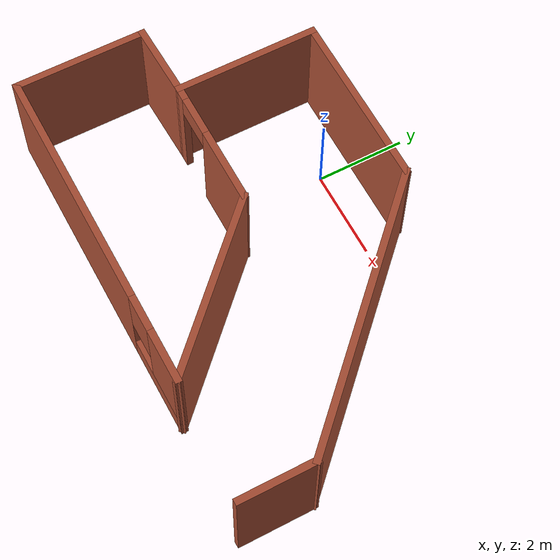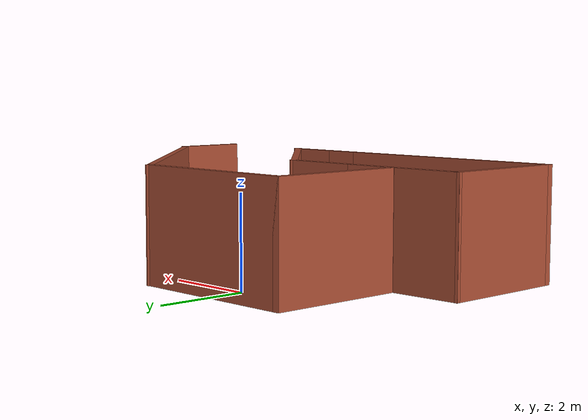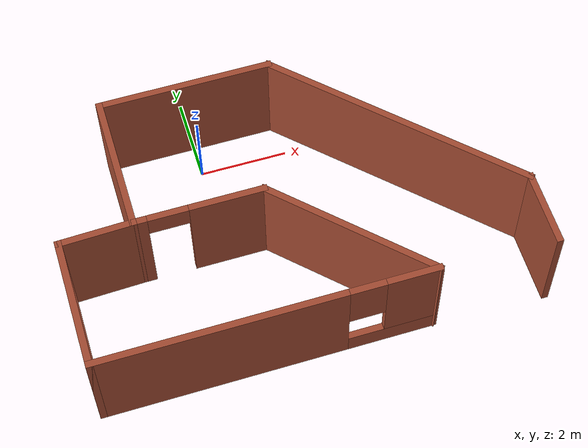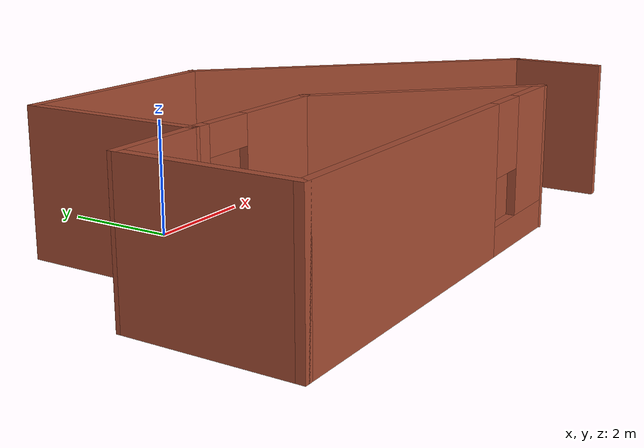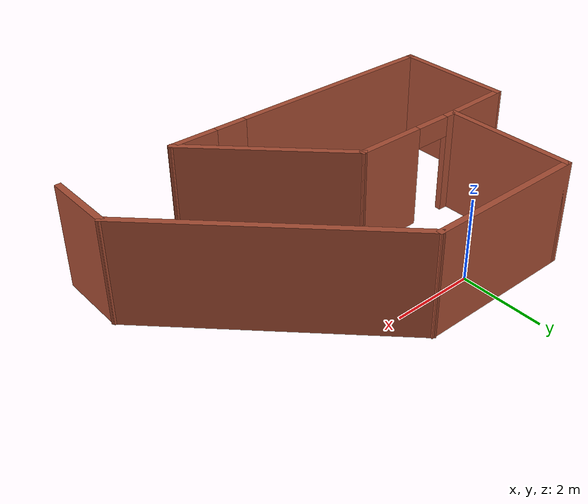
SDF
<?xml version='1.0'?>
<sdf version='1.6'>
  <model name='building2'>
    <pose frame=''>1.4249 -2.23039 0 0 -0 0</pose>
    <link name='Wall_0'>
      <collision name='Wall_0_Collision'>
        <geometry>
          <box>
            <size>3 0.15 2.5</size>
          </box>
        </geometry>
        <pose frame=''>0 0 1.25 0 -0 0</pose>
      </collision>
      <visual name='Wall_0_Visual'>
        <pose frame=''>0 0 1.25 0 -0 0</pose>
        <geometry>
          <box>
            <size>3 0.15 2.5</size>
          </box>
        </geometry>
        <material>
          <script>
            <uri>file://media/materials/scripts/gazebo.material</uri>
            <name>Gazebo/Bricks</name>
          </script>
          <ambient>1 1 1 1</ambient>
        </material>
        <meta>
          <layer>0</layer>
        </meta>
      </visual>
      <pose frame=''>-4.98489 -1.54461 0 0 0 -1.5708</pose>
    </link>
    <link name='Wall_1'>
      <pose frame=''>-1.3099 -2.96961 0 0 -0 0</pose>
      <visual name='Wall_1_Visual_0'>
        <pose frame=''>-1.00946 0 1.25 0 -0 0</pose>
        <geometry>
          <box>
            <size>5.48109 0.15 2.5</size>
          </box>
        </geometry>
        <material>
          <script>
            <uri>file://media/materials/scripts/gazebo.material</uri>
            <name>Gazebo/Bricks</name>
          </script>
          <ambient>1 1 1 1</ambient>
        </material>
        <meta>
          <layer>0</layer>
        </meta>
      </visual>
      <collision name='Wall_1_Collision_0'>
        <geometry>
          <box>
            <size>5.48109 0.15 2.5</size>
          </box>
        </geometry>
        <pose frame=''>-1.00946 0 1.25 0 -0 0</pose>
      </collision>
      <visual name='Wall_1_Visual_1'>
        <pose frame=''>2.74054 0 0.25 0 -0 0</pose>
        <geometry>
          <box>
            <size>2.01891 0.15 0.5</size>
          </box>
        </geometry>
        <material>
          <script>
            <uri>file://media/materials/scripts/gazebo.material</uri>
            <name>Gazebo/Bricks</name>
          </script>
          <ambient>1 1 1 1</ambient>
        </material>
        <meta>
          <layer>0</layer>
        </meta>
      </visual>
      <collision name='Wall_1_Collision_1'>
        <geometry>
          <box>
            <size>2.01891 0.15 0.5</size>
          </box>
        </geometry>
        <pose frame=''>2.74054 0 0.25 0 -0 0</pose>
      </collision>
      <visual name='Wall_1_Visual_2'>
        <pose frame=''>3.14054 0 1.5 0 -0 0</pose>
        <geometry>
          <box>
            <size>1.21891 0.15 2</size>
          </box>
        </geometry>
        <material>
          <script>
            <uri>file://media/materials/scripts/gazebo.material</uri>
            <name>Gazebo/Bricks</name>
          </script>
          <ambient>1 1 1 1</ambient>
        </material>
        <meta>
          <layer>0</layer>
        </meta>
      </visual>
      <collision name='Wall_1_Collision_2'>
        <geometry>
          <box>
            <size>1.21891 0.15 2</size>
          </box>
        </geometry>
        <pose frame=''>3.14054 0 1.5 0 -0 0</pose>
      </collision>
      <visual name='Wall_1_Visual_3'>
        <pose frame=''>2.13109 0 1.9 0 -0 0</pose>
        <geometry>
          <box>
            <size>0.8 0.15 1.2</size>
          </box>
        </geometry>
        <material>
          <script>
            <uri>file://media/materials/scripts/gazebo.material</uri>
            <name>Gazebo/Bricks</name>
          </script>
          <ambient>1 1 1 1</ambient>
        </material>
        <meta>
          <layer>0</layer>
        </meta>
      </visual>
      <collision name='Wall_1_Collision_3'>
        <geometry>
          <box>
            <size>0.8 0.15 1.2</size>
          </box>
        </geometry>
        <pose frame=''>2.13109 0 1.9 0 -0 0</pose>
      </collision>
    </link>
    <link name='Wall_2'>
      <collision name='Wall_2_Collision'>
        <geometry>
          <box>
            <size>4.25 0.15 2.5</size>
          </box>
        </geometry>
        <pose frame=''>0 0 1.25 0 -0 0</pose>
      </collision>
      <visual name='Wall_2_Visual'>
        <pose frame=''>0 0 1.25 0 -0 0</pose>
        <geometry>
          <box>
            <size>4.25 0.15 2.5</size>
          </box>
        </geometry>
        <material>
          <script>
            <uri>file://media/materials/scripts/gazebo.material</uri>
            <name>Gazebo/Bricks</name>
          </script>
          <ambient>1 1 1 1</ambient>
        </material>
        <meta>
          <layer>0</layer>
        </meta>
      </visual>
      <pose frame=''>0.915536 -1.52004 0 0 -0 2.35619</pose>
    </link>
    <link name='Wall_3'>
      <pose frame=''>-1.95903 -0.070469 0 0 -0 3.14159</pose>
      <visual name='Wall_3_Visual_0'>
        <pose frame=''>-0.634678 0 1.25 0 -0 0</pose>
        <geometry>
          <box>
            <size>1.73064 0.15 2.5</size>
          </box>
        </geometry>
        <material>
          <script>
            <uri>file://media/materials/scripts/gazebo.material</uri>
            <name>Gazebo/Bricks</name>
          </script>
          <ambient>1 1 1 1</ambient>
        </material>
        <meta>
          <layer>0</layer>
        </meta>
      </visual>
      <collision name='Wall_3_Collision_0'>
        <geometry>
          <box>
            <size>1.73064 0.15 2.5</size>
          </box>
        </geometry>
        <pose frame=''>-0.634678 0 1.25 0 -0 0</pose>
      </collision>
      <visual name='Wall_3_Visual_1'>
        <pose frame=''>1.31532 0 1.25 0 -0 0</pose>
        <geometry>
          <box>
            <size>0.369355 0.15 2.5</size>
          </box>
        </geometry>
        <material>
          <script>
            <uri>file://media/materials/scripts/gazebo.material</uri>
            <name>Gazebo/Bricks</name>
          </script>
          <ambient>1 1 1 1</ambient>
        </material>
        <meta>
          <layer>0</layer>
        </meta>
      </visual>
      <collision name='Wall_3_Collision_1'>
        <geometry>
          <box>
            <size>0.369355 0.15 2.5</size>
          </box>
        </geometry>
        <pose frame=''>1.31532 0 1.25 0 -0 0</pose>
      </collision>
      <visual name='Wall_3_Visual_2'>
        <pose frame=''>0.680645 0 2.25 0 -0 0</pose>
        <geometry>
          <box>
            <size>0.9 0.15 0.5</size>
          </box>
        </geometry>
        <material>
          <script>
            <uri>file://media/materials/scripts/gazebo.material</uri>
            <name>Gazebo/Bricks</name>
          </script>
          <ambient>1 1 1 1</ambient>
        </material>
        <meta>
          <layer>0</layer>
        </meta>
      </visual>
      <collision name='Wall_3_Collision_2'>
        <geometry>
          <box>
            <size>0.9 0.15 0.5</size>
          </box>
        </geometry>
        <pose frame=''>0.680645 0 2.25 0 -0 0</pose>
      </collision>
    </link>
    <link name='Wall_4'>
      <collision name='Wall_4_Collision'>
        <geometry>
          <box>
            <size>3.25 0.15 2.5</size>
          </box>
        </geometry>
        <pose frame=''>0 0 1.25 0 -0 0</pose>
      </collision>
      <visual name='Wall_4_Visual'>
        <pose frame=''>0 0 1.25 0 -0 0</pose>
        <geometry>
          <box>
            <size>3.25 0.15 2.5</size>
          </box>
        </geometry>
        <material>
          <script>
            <uri>file://media/materials/scripts/gazebo.material</uri>
            <name>Gazebo/Bricks</name>
          </script>
          <ambient>1 1 1 1</ambient>
        </material>
        <meta>
          <layer>0</layer>
        </meta>
      </visual>
      <pose frame=''>-3.38403 1.47953 0 0 -0 1.5708</pose>
    </link>
    <link name='Wall_5'>
      <collision name='Wall_5_Collision'>
        <geometry>
          <box>
            <size>4 0.15 2.5</size>
          </box>
        </geometry>
        <pose frame=''>0 0 1.25 0 -0 0</pose>
      </collision>
      <visual name='Wall_5_Visual'>
        <pose frame=''>0 0 1.25 0 -0 0</pose>
        <geometry>
          <box>
            <size>4 0.15 2.5</size>
          </box>
        </geometry>
        <material>
          <script>
            <uri>file://media/materials/scripts/gazebo.material</uri>
            <name>Gazebo/Bricks</name>
          </script>
          <ambient>1 1 1 1</ambient>
        </material>
        <meta>
          <layer>0</layer>
        </meta>
      </visual>
      <pose frame=''>-1.45903 3.02953 0 0 -0 0</pose>
    </link>
    <link name='Wall_6'>
      <collision name='Wall_6_Collision'>
        <geometry>
          <box>
            <size>6.5 0.15 2.5</size>
          </box>
        </geometry>
        <pose frame=''>0 0 1.25 0 -0 0</pose>
      </collision>
      <visual name='Wall_6_Visual'>
        <pose frame=''>0 0 1.25 0 -0 0</pose>
        <geometry>
          <box>
            <size>6.5 0.15 2.5</size>
          </box>
        </geometry>
        <material>
          <script>
            <uri>file://media/materials/scripts/gazebo.material</uri>
            <name>Gazebo/Bricks</name>
          </script>
          <ambient>1 1 1 1</ambient>
        </material>
        <meta>
          <layer>0</layer>
        </meta>
      </visual>
      <pose frame=''>2.71103 0.784467 0 0 0 -0.785398</pose>
    </link>
    <link name='Wall_7'>
      <collision name='Wall_7_Collision'>
        <geometry>
          <box>
            <size>1.75 0.15 2.5</size>
          </box>
        </geometry>
        <pose frame=''>0 0 1.25 0 -0 0</pose>
      </collision>
      <visual name='Wall_7_Visual'>
        <pose frame=''>0 0 1.25 0 -0 0</pose>
        <geometry>
          <box>
            <size>1.75 0.15 2.5</size>
          </box>
        </geometry>
        <material>
          <script>
            <uri>file://media/materials/scripts/gazebo.material</uri>
            <name>Gazebo/Bricks</name>
          </script>
          <ambient>1 1 1 1</ambient>
        </material>
        <meta>
          <layer>0</layer>
        </meta>
      </visual>
      <pose frame=''>4.9561 -2.2606 0 0 0 -1.5708</pose>
    </link>
    <link name='Wall_9'>
      <collision name='Wall_9_Collision'>
        <geometry>
          <box>
            <size>1.75162 0.15 2.5</size>
          </box>
        </geometry>
        <pose frame=''>0 0 1.25 0 -0 0</pose>
      </collision>
      <visual name='Wall_9_Visual'>
        <pose frame=''>0 0 1.25 0 -0 0</pose>
        <geometry>
          <box>
            <size>1.75162 0.15 2.5</size>
          </box>
        </geometry>
        <material>
          <script>
            <uri>file://media/materials/scripts/gazebo.material</uri>
            <name>Gazebo/Bricks</name>
          </script>
          <ambient>1 1 1 1</ambient>
        </material>
        <meta>
          <layer>0</layer>
        </meta>
      </visual>
      <pose frame=''>-4.18446 -0.095038 0 0 -0 0.030685</pose>
    </link>
    <static>1</static>
  </model>
</sdf>
